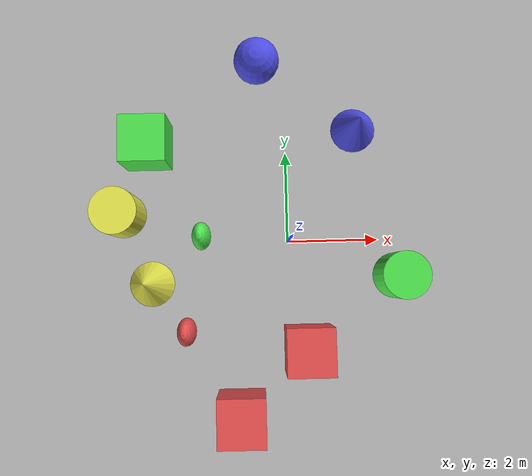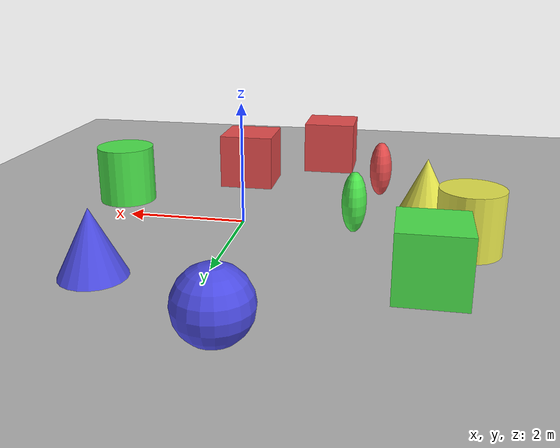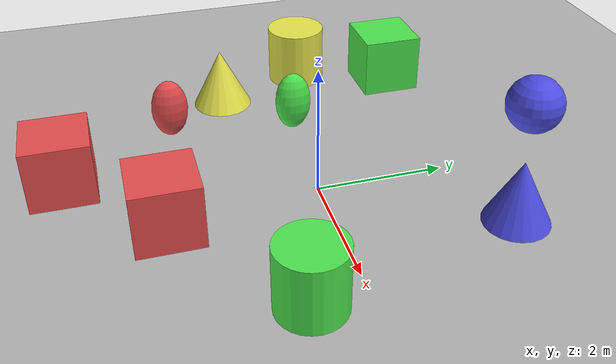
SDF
<sdf version='1.10'>
  <world name='default'>
    <plugin name='gz::sim::systems::Physics' filename='gz-sim-physics-system'/>
    <plugin name='gz::sim::systems::UserCommands' filename='gz-sim-user-commands-system'/>
    <plugin name='gz::sim::systems::SceneBroadcaster' filename='gz-sim-scene-broadcaster-system'/>
    <plugin name='gz::sim::systems::Sensors' filename='gz-sim-sensors-system'>
      <render_engine>ogre2</render_engine>
    </plugin>
    <plugin name='gz::sim::systems::Imu' filename='gz-sim-imu-system'/>
    <gravity>0 0 -9.8000000000000007</gravity>
    <magnetic_field>6.0000000000000002e-06 2.3e-05 -4.1999999999999998e-05</magnetic_field>
    <atmosphere type='adiabatic'/>
    <physics type='ode'>
      <max_step_size>0.001</max_step_size>
      <real_time_factor>1</real_time_factor>
      <real_time_update_rate>1000</real_time_update_rate>
    </physics>
    <scene>
      <ambient>0.400000006 0.400000006 0.400000006 1</ambient>
      <background>0.699999988 0.699999988 0.699999988 1</background>
      <shadows>true</shadows>
    </scene>
    <model name='ground_plane'>
      <static>true</static>
      <link name='link'>
        <collision name='collision'>
          <geometry>
            <plane>
              <normal>0 0 1</normal>
              <size>100 100</size>
            </plane>
          </geometry>
          <surface>
            <friction>
              <ode>
                <mu>100</mu>
                <mu2>50</mu2>
              </ode>
            </friction>
            <bounce/>
            <contact/>
          </surface>
        </collision>
        <visual name='visual'>
          <cast_shadows>false</cast_shadows>
          <geometry>
            <plane>
              <normal>0 0 1</normal>
              <size>100 100</size>
            </plane>
          </geometry>
            <material>
            <ambient>0.300000012 0.300000012 0.300000012 1</ambient>
            <diffuse>0.699999988 0.699999988 0.699999988 1</diffuse>
            <specular>1 1 1 1</specular>
          </material>

        </visual>
        <pose>0 0 0 0 0 0</pose>
        <inertial>
          <pose>0 0 0 0 0 0</pose>
          <mass>1</mass>
          <inertia>
            <ixx>1</ixx>
            <ixy>0</ixy>
            <ixz>0</ixz>
            <iyy>1</iyy>
            <iyz>0</iyz>
            <izz>1</izz>
          </inertia>
        </inertial>
        <enable_wind>false</enable_wind>
      </link>
      <pose>0 0 0 0 0 0</pose>
      <self_collide>false</self_collide>
    </model>
    <model name='cone'>
      <pose>1.5400648749907795 2.5000043559825986 0.5 0 0 0</pose>
      <link name='cone_link'>
        <inertial>
          <inertia>
            <ixx>0.074999999999999997</ixx>
            <ixy>0</ixy>
            <ixz>0</ixz>
            <iyy>0.074999999999999997</iyy>
            <iyz>0</iyz>
            <izz>0.074999999999999997</izz>
          </inertia>
          <mass>1</mass>
          <pose>0 0 0 0 0 0</pose>
        </inertial>
        <collision name='cone_collision'>
          <geometry>
            <cone>
              <radius>0.5</radius>
              <length>1</length>
            </cone>
          </geometry>
          <surface>
            <friction>
              <ode/>
            </friction>
            <bounce/>
            <contact/>
          </surface>
        </collision>
        <visual name='cone_visual'>
          <geometry>
            <cone>
              <radius>0.5</radius>
              <length>1</length>
            </cone>
          </geometry>
         <material>
  <ambient>0.2 0.2 0.8 1</ambient>   <!-- Bluish -->
  <diffuse>0.3 0.3 0.9 1</diffuse>
  <specular>1 1 1 1</specular>
</material>
        </visual>
        <pose>0 0 0 0 0 0</pose>
        <enable_wind>false</enable_wind>
      </link>
      <static>true</static>
      <self_collide>false</self_collide>
    </model>
    <model name='sphere'>
      <pose>-0.61381168417105947 3.9652193581210362 0.5 0 0 0</pose>
      <link name='sphere_link'>
        <inertial>
          <inertia>
            <ixx>0.10000000000000001</ixx>
            <ixy>0</ixy>
            <ixz>0</ixz>
            <iyy>0.10000000000000001</iyy>
            <iyz>0</iyz>
            <izz>0.10000000000000001</izz>
          </inertia>
          <mass>1</mass>
          <pose>0 0 0 0 0 0</pose>
        </inertial>
        <collision name='sphere_collision'>
          <geometry>
            <sphere>
              <radius>0.5</radius>
            </sphere>
          </geometry>
          <surface>
            <friction>
              <ode/>
            </friction>
            <bounce/>
            <contact/>
          </surface>
        </collision>
        <visual name='sphere_visual'>
          <geometry>
            <sphere>
              <radius>0.5</radius>
            </sphere>
          </geometry>
          <material>
  <ambient>0.2 0.2 0.8 1</ambient>   <!-- Bluish -->
  <diffuse>0.3 0.3 0.9 1</diffuse>
  <specular>1 1 1 1</specular>
</material>
        </visual>
        <pose>0 0 0 0 0 0</pose>
        <enable_wind>false</enable_wind>
      </link>
      <static>true</static>
      <self_collide>false</self_collide>
    </model>
    <model name='box'>
      <pose>-3.0465422561134297 2.174067170071508 0.5 0 0 0</pose>
      <link name='box_link'>
        <inertial>
          <inertia>
            <ixx>0.16666</ixx>
            <ixy>0</ixy>
            <ixz>0</ixz>
            <iyy>0.16666</iyy>
            <iyz>0</iyz>
            <izz>0.16666</izz>
          </inertia>
          <mass>1</mass>
          <pose>0 0 0 0 0 0</pose>
        </inertial>
        <collision name='box_collision'>
          <geometry>
            <box>
              <size>1 1 1</size>
            </box>
          </geometry>
          <surface>
            <friction>
              <ode/>
            </friction>
            <bounce/>
            <contact/>
          </surface>
        </collision>
        <visual name='box_visual'>
          <geometry>
            <box>
              <size>1 1 1</size>
            </box>
          </geometry>
         <material>
  <ambient>0.2 0.8 0.2 1</ambient>   <!-- Greenish -->
  <diffuse>0.3 0.9 0.3 1</diffuse>
  <specular>1 1 1 1</specular>
</material>
        </visual>
        <pose>0 0 0 0 0 0</pose>
        <enable_wind>false</enable_wind>
      </link>
      <static>true</static>
      <self_collide>false</self_collide>
    </model>
    <model name='ellipsoid'>
      <pose>-1.8621220490687893 0.12320410936334381 0.5 0 0 0</pose>
      <link name='ellipsoid_link'>
        <inertial>
          <inertia>
            <ixx>0.068000000000000005</ixx>
            <ixy>0</ixy>
            <ixz>0</ixz>
            <iyy>0.058000000000000003</iyy>
            <iyz>0</iyz>
            <izz>0.025999999999999999</izz>
          </inertia>
          <mass>1</mass>
          <pose>0 0 0 0 0 0</pose>
        </inertial>
        <collision name='ellipsoid_collision'>
          <geometry>
            <ellipsoid>
              <radii>0.20000000000000001 0.29999999999999999 0.5</radii>
            </ellipsoid>
          </geometry>
          <surface>
            <friction>
              <ode/>
            </friction>
            <bounce/>
            <contact/>
          </surface>
        </collision>
        <visual name='ellipsoid_visual'>
          <geometry>
            <ellipsoid>
              <radii>0.20000000000000001 0.29999999999999999 0.5</radii>
            </ellipsoid>
          </geometry>
          <material>
  <ambient>0.2 0.8 0.2 1</ambient>   <!-- Greenish -->
  <diffuse>0.3 0.9 0.3 1</diffuse>
  <specular>1 1 1 1</specular>
</material>
        </visual>
        <pose>0 0 0 0 0 0</pose>
        <enable_wind>false</enable_wind>
      </link>
      <static>true</static>
      <self_collide>false</self_collide>
    </model>
    <model name='box_0'>
      <pose>0.38536335945818578 -2.3206948396270808 0.5 0 0 0</pose>
      <link name='box_link'>
        <inertial>
          <inertia>
            <ixx>0.16666</ixx>
            <ixy>0</ixy>
            <ixz>0</ixz>
            <iyy>0.16666</iyy>
            <iyz>0</iyz>
            <izz>0.16666</izz>
          </inertia>
          <mass>1</mass>
          <pose>0 0 0 0 0 0</pose>
        </inertial>
        <collision name='box_collision'>
          <geometry>
            <box>
              <size>1 1 1</size>
            </box>
          </geometry>
          <surface>
            <friction>
              <ode/>
            </friction>
            <bounce/>
            <contact/>
          </surface>
        </collision>
        <visual name='box_visual'>
          <geometry>
            <box>
              <size>1 1 1</size>
            </box>
          </geometry>
          <material>
  <ambient>0.8 0.2 0.2 1</ambient>   <!-- Reddish -->
  <diffuse>0.9 0.3 0.3 1</diffuse>
  <specular>1 1 1 1</specular>
</material>
        </visual>
        <pose>0 0 0 0 0 0</pose>
        <enable_wind>false</enable_wind>
      </link>
      <static>true</static>
      <self_collide>false</self_collide>
    </model>
    <model name='cylinder'>
      <pose>2.3746471323119085 -0.79200362297954607 0.5 0 0 0</pose>
      <link name='cylinder_link'>
        <inertial>
          <inertia>
            <ixx>0.14580000000000001</ixx>
            <ixy>0</ixy>
            <ixz>0</ixz>
            <iyy>0.14580000000000001</iyy>
            <iyz>0</iyz>
            <izz>0.125</izz>
          </inertia>
          <mass>1</mass>
          <pose>0 0 0 0 0 0</pose>
        </inertial>
        <collision name='cylinder_collision'>
          <geometry>
            <cylinder>
              <radius>0.5</radius>
              <length>1</length>
            </cylinder>
          </geometry>
          <surface>
            <friction>
              <ode/>
            </friction>
            <bounce/>
            <contact/>
          </surface>
        </collision>
        <visual name='cylinder_visual'>
          <geometry>
            <cylinder>
              <radius>0.5</radius>
              <length>1</length>
            </cylinder>
          </geometry>
          <material>
  <ambient>0.2 0.8 0.2 1</ambient>   <!-- Greenish -->
  <diffuse>0.3 0.9 0.3 1</diffuse>
  <specular>1 1 1 1</specular>
</material>
        </visual>
        <pose>0 0 0 0 0 0</pose>
        <enable_wind>false</enable_wind>
      </link>
      <static>true</static>
      <self_collide>false</self_collide>
    </model>
    <model name='ellipsoid_0'>
      <pose>-2.1875083380186218 -1.8955005550758175 0.5 0 0 0</pose>
      <link name='ellipsoid_link'>
        <inertial>
          <inertia>
            <ixx>0.068000000000000005</ixx>
            <ixy>0</ixy>
            <ixz>0</ixz>
            <iyy>0.058000000000000003</iyy>
            <iyz>0</iyz>
            <izz>0.025999999999999999</izz>
          </inertia>
          <mass>1</mass>
          <pose>0 0 0 0 0 0</pose>
        </inertial>
        <collision name='ellipsoid_collision'>
          <geometry>
            <ellipsoid>
              <radii>0.20000000000000001 0.29999999999999999 0.5</radii>
            </ellipsoid>
          </geometry>
          <surface>
            <friction>
              <ode/>
            </friction>
            <bounce/>
            <contact/>
          </surface>
        </collision>
        <visual name='ellipsoid_visual'>
          <geometry>
            <ellipsoid>
              <radii>0.20000000000000001 0.29999999999999999 0.5</radii>
            </ellipsoid>
          </geometry>
          <material>
  <ambient>0.8 0.2 0.2 1</ambient>   <!-- Reddish -->
  <diffuse>0.9 0.3 0.3 1</diffuse>
  <specular>1 1 1 1</specular>
</material>
        </visual>
        <pose>0 0 0 0 0 0</pose>
        <enable_wind>false</enable_wind>
      </link>
      <static>true</static>
      <self_collide>false</self_collide>
    </model>
    <model name='box_1'>
      <pose>-1.05402518569288 -3.6889759112359886 0.5 0 0 0</pose>
      <link name='box_link'>
        <inertial>
          <inertia>
            <ixx>0.16666</ixx>
            <ixy>0</ixy>
            <ixz>0</ixz>
            <iyy>0.16666</iyy>
            <iyz>0</iyz>
            <izz>0.16666</izz>
          </inertia>
          <mass>1</mass>
          <pose>0 0 0 0 0 0</pose>
        </inertial>
        <collision name='box_collision'>
          <geometry>
            <box>
              <size>1 1 1</size>
            </box>
          </geometry>
          <surface>
            <friction>
              <ode/>
            </friction>
            <bounce/>
            <contact/>
          </surface>
        </collision>
        <visual name='box_visual'>
          <geometry>
            <box>
              <size>1 1 1</size>
            </box>
          </geometry>
          <material>
  <ambient>0.8 0.2 0.2 1</ambient>   <!-- Reddish -->
  <diffuse>0.9 0.3 0.3 1</diffuse>
  <specular>1 1 1 1</specular>
</material>
        </visual>
        <pose>0 0 0 0 0 0</pose>
        <enable_wind>false</enable_wind>
      </link>
      <static>true</static>
      <self_collide>false</self_collide>
    </model>
    <model name='cone_1'>
      <pose>-3.0120599410676419 -0.880130343086588 0.5 0 0 0</pose>
      <link name='cone_link'>
        <inertial>
          <inertia>
            <ixx>0.074999999999999997</ixx>
            <ixy>0</ixy>
            <ixz>0</ixz>
            <iyy>0.074999999999999997</iyy>
            <iyz>0</iyz>
            <izz>0.074999999999999997</izz>
          </inertia>
          <mass>1</mass>
          <pose>0 0 0 0 0 0</pose>
        </inertial>
        <collision name='cone_collision'>
          <geometry>
            <cone>
              <radius>0.5</radius>
              <length>1</length>
            </cone>
          </geometry>
          <surface>
            <friction>
              <ode/>
            </friction>
            <bounce/>
            <contact/>
          </surface>
        </collision>
        <visual name='cone_visual'>
          <geometry>
            <cone>
              <radius>0.5</radius>
              <length>1</length>
            </cone>
          </geometry>
          <material>
  <ambient>0.8 0.8 0.2 1</ambient>   <!-- Yellowish -->
  <diffuse>0.9 0.9 0.3 1</diffuse>
  <specular>1 1 1 1</specular>
</material>

        </visual>
        <pose>0 0 0 0 0 0</pose>
        <enable_wind>false</enable_wind>
      </link>
      <static>true</static>
      <self_collide>false</self_collide>
    </model>
    <model name='cylinder_0'>
      <pose>-3.6367279132051715 0.65603830462156276 0.5 0 0 0</pose>
      <link name='cylinder_link'>
        <inertial>
          <inertia>
            <ixx>0.14580000000000001</ixx>
            <ixy>0</ixy>
            <ixz>0</ixz>
            <iyy>0.14580000000000001</iyy>
            <iyz>0</iyz>
            <izz>0.125</izz>
          </inertia>
          <mass>1</mass>
          <pose>0 0 0 0 0 0</pose>
        </inertial>
        <collision name='cylinder_collision'>
          <geometry>
            <cylinder>
              <radius>0.5</radius>
              <length>1</length>
            </cylinder>
          </geometry>
          <surface>
            <friction>
              <ode/>
            </friction>
            <bounce/>
            <contact/>
          </surface>
        </collision>
        <visual name='cylinder_visual'>
          <geometry>
            <cylinder>
              <radius>0.5</radius>
              <length>1</length>
            </cylinder>
          </geometry>
          <material>
  <ambient>0.8 0.8 0.2 1</ambient>   <!-- Yellowish -->
  <diffuse>0.9 0.9 0.3 1</diffuse>
  <specular>1 1 1 1</specular>
</material>

        </visual>
        <pose>0 0 0 0 0 0</pose>
        <enable_wind>false</enable_wind>
      </link>
      <static>true</static>
      <self_collide>false</self_collide>
    </model>
    <light name='sun' type='directional'>
      <pose>0 0 10 0 0 0</pose>
      <cast_shadows>true</cast_shadows>
      <intensity>1</intensity>
      <direction>-0.5 0.10000000000000001 -0.90000000000000002</direction>
      <diffuse>0.800000012 0.800000012 0.800000012 1</diffuse>
      <specular>0.200000003 0.200000003 0.200000003 1</specular>
      <attenuation>
        <range>1000</range>
        <linear>0.01</linear>
        <constant>0.90000000000000002</constant>
        <quadratic>0.001</quadratic>
      </attenuation>
      <spot>
        <inner_angle>0</inner_angle>
        <outer_angle>0</outer_angle>
        <falloff>0</falloff>
      </spot>
    </light>
  </world>
</sdf>
